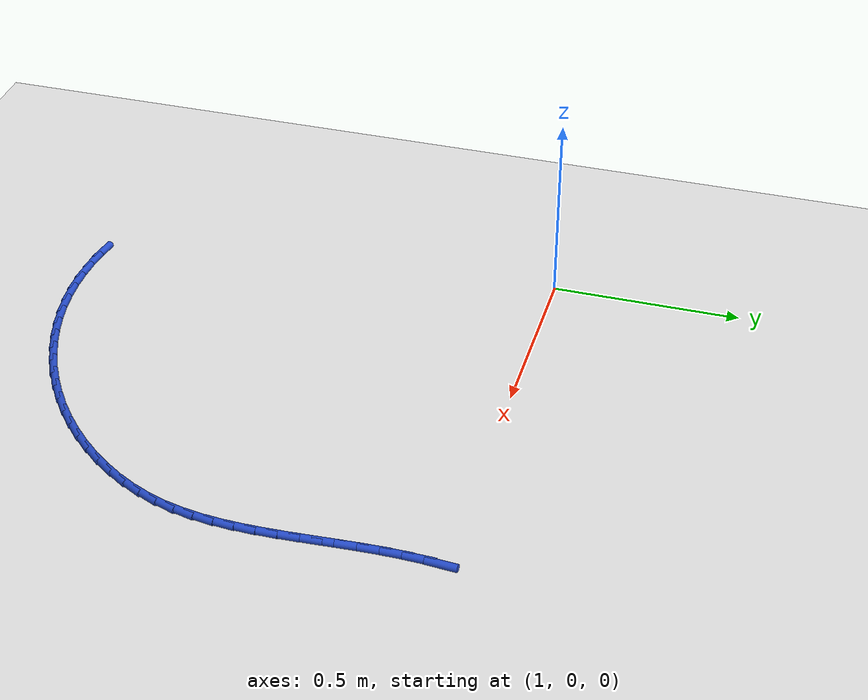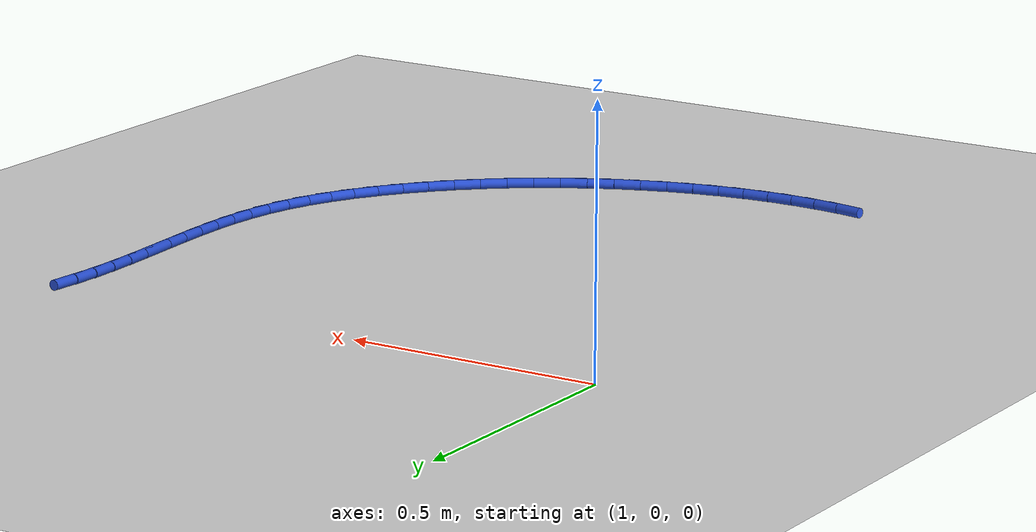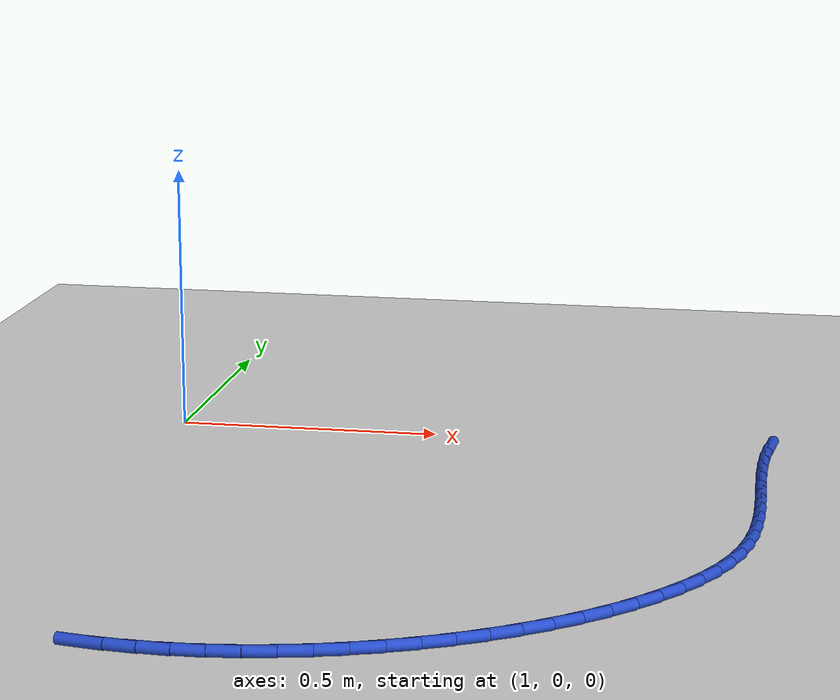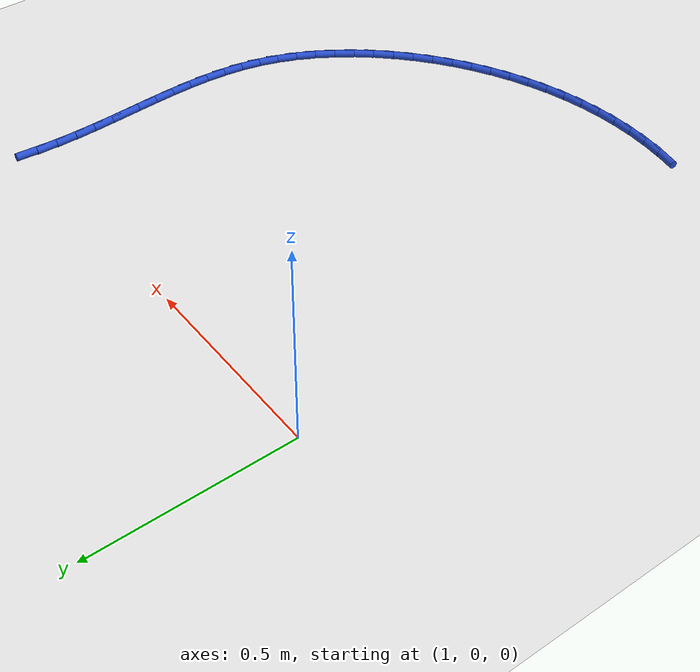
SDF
<sdf version="1.6">
 <world name="default">
  <model name="ground_plane">
   <static>1</static>
   <link name="link">
    <collision name="collision">
     <geometry><plane><normal>0 0 1</normal><size>100 100</size></plane></geometry>
     <surface><friction><ode><mu>100</mu><mu2>50</mu2></ode></friction></surface>
    </collision>
    <visual name="visual">
     <cast_shadows>0</cast_shadows>
     <geometry><plane><normal>0 0 1</normal><size>100 100</size></plane></geometry>
     <material>
      <script><uri>file://media/materials/scripts/gazebo.material</uri><name>Gazebo/WhiteGlow</name></script>
     </material>
    </visual>
   </link>
  </model>
  <model name="line">
   <link name="link_70">
    <pose>2.1427502178637186 -0.0031276059772412618 0.01 0 1.57 1.4941530411305144</pose>
    <collision name="collision">
     <geometry><cylinder><radius>0.01</radius><length>0.08</length></cylinder></geometry>
    </collision>
    <visual name="visual">
     <material>
      <script><name>Gazebo/Blue</name><uri>file://media/materials/scripts/gazebo.material</uri></script>
     </material>
     <geometry><cylinder><radius>0.01</radius><length>0.08</length></cylinder></geometry>
    </visual>
   </link>
   <link name="link_71">
    <pose>2.1387025013404113 -0.05583656401671815 0.01 0 1.57 1.545949200057749</pose>
    <collision name="collision">
     <geometry><cylinder><radius>0.01</radius><length>0.08</length></cylinder></geometry>
    </collision>
    <visual name="visual">
     <material>
      <script><name>Gazebo/Blue</name><uri>file://media/materials/scripts/gazebo.material</uri></script>
     </material>
     <geometry><cylinder><radius>0.01</radius><length>0.08</length></cylinder></geometry>
    </visual>
   </link>
   <link name="link_72">
    <pose>2.1373833662620587 -0.10891568306555233 0.01 0 1.57 -1.556020988119271</pose>
    <collision name="collision">
     <geometry><cylinder><radius>0.01</radius><length>0.08</length></cylinder></geometry>
    </collision>
    <visual name="visual">
     <material>
      <script><name>Gazebo/Blue</name><uri>file://media/materials/scripts/gazebo.material</uri></script>
     </material>
     <geometry><cylinder><radius>0.01</radius><length>0.08</length></cylinder></geometry>
    </visual>
   </link>
   <link name="link_73">
    <pose>2.138171521332069 -0.1622544072915345 0.01 0 1.57 -1.5283046523151043</pose>
    <collision name="collision">
     <geometry><cylinder><radius>0.01</radius><length>0.08</length></cylinder></geometry>
    </collision>
    <visual name="visual">
     <material>
      <script><name>Gazebo/Blue</name><uri>file://media/materials/scripts/gazebo.material</uri></script>
     </material>
     <geometry><cylinder><radius>0.01</radius><length>0.08</length></cylinder></geometry>
    </visual>
   </link>
   <link name="link_74">
    <pose>2.140445675253847 -0.2157421808624529 0.01 0 1.57 -1.5122218912454404</pose>
    <collision name="collision">
     <geometry><cylinder><radius>0.01</radius><length>0.08</length></cylinder></geometry>
    </collision>
    <visual name="visual">
     <material>
      <script><name>Gazebo/Blue</name><uri>file://media/materials/scripts/gazebo.material</uri></script>
     </material>
     <geometry><cylinder><radius>0.01</radius><length>0.08</length></cylinder></geometry>
    </visual>
   </link>
   <link name="link_75">
    <pose>2.1435845367308013 -0.2692684479460983 0.01 0 1.57 -1.5076062605046283</pose>
    <collision name="collision">
     <geometry><cylinder><radius>0.01</radius><length>0.08</length></cylinder></geometry>
    </collision>
    <visual name="visual">
     <material>
      <script><name>Gazebo/Blue</name><uri>file://media/materials/scripts/gazebo.material</uri></script>
     </material>
     <geometry><cylinder><radius>0.01</radius><length>0.08</length></cylinder></geometry>
    </visual>
   </link>
   <link name="link_76">
    <pose>2.146966814466337 -0.3227226527102605 0.01 0 1.57 -1.5144581628913876</pose>
    <collision name="collision">
     <geometry><cylinder><radius>0.01</radius><length>0.08</length></cylinder></geometry>
    </collision>
    <visual name="visual">
     <material>
      <script><name>Gazebo/Blue</name><uri>file://media/materials/scripts/gazebo.material</uri></script>
     </material>
     <geometry><cylinder><radius>0.01</radius><length>0.08</length></cylinder></geometry>
    </visual>
   </link>
   <link name="link_77">
    <pose>2.1499712171638623 -0.3759942393227296 0.01 0 1.57 -1.5329643212624884</pose>
    <collision name="collision">
     <geometry><cylinder><radius>0.01</radius><length>0.08</length></cylinder></geometry>
    </collision>
    <visual name="visual">
     <material>
      <script><name>Gazebo/Blue</name><uri>file://media/materials/scripts/gazebo.material</uri></script>
     </material>
     <geometry><cylinder><radius>0.01</radius><length>0.08</length></cylinder></geometry>
    </visual>
   </link>
   <link name="link_78">
    <pose>2.151976453526782 -0.42897265195129614 0.01 0 1.57 -1.5634777498424401</pose>
    <collision name="collision">
     <geometry><cylinder><radius>0.01</radius><length>0.08</length></cylinder></geometry>
    </collision>
    <visual name="visual">
     <material>
      <script><name>Gazebo/Blue</name><uri>file://media/materials/scripts/gazebo.material</uri></script>
     </material>
     <geometry><cylinder><radius>0.01</radius><length>0.08</length></cylinder></geometry>
    </visual>
   </link>
   <link name="link_79">
    <pose>2.1523612322585044 -0.48154733476374834 0.01 0 1.57 1.5351419071781498</pose>
    <collision name="collision">
     <geometry><cylinder><radius>0.01</radius><length>0.08</length></cylinder></geometry>
    </collision>
    <visual name="visual">
     <material>
      <script><name>Gazebo/Blue</name><uri>file://media/materials/scripts/gazebo.material</uri></script>
     </material>
     <geometry><cylinder><radius>0.01</radius><length>0.08</length></cylinder></geometry>
    </visual>
   </link>
   <link name="link_80">
    <pose>2.1505042620624355 -0.5336077319278771 0.01 0 1.57 1.4792870980030695</pose>
    <collision name="collision">
     <geometry><cylinder><radius>0.01</radius><length>0.08</length></cylinder></geometry>
    </collision>
    <visual name="visual">
     <material>
      <script><name>Gazebo/Blue</name><uri>file://media/materials/scripts/gazebo.material</uri></script>
     </material>
     <geometry><cylinder><radius>0.01</radius><length>0.08</length></cylinder></geometry>
    </visual>
   </link>
   <link name="link_81">
    <pose>2.145784251641981 -0.5850432876114722 0.01 0 1.57 1.4103661859066337</pose>
    <collision name="collision">
     <geometry><cylinder><radius>0.01</radius><length>0.08</length></cylinder></geometry>
    </collision>
    <visual name="visual">
     <material>
      <script><name>Gazebo/Blue</name><uri>file://media/materials/scripts/gazebo.material</uri></script>
     </material>
     <geometry><cylinder><radius>0.01</radius><length>0.08</length></cylinder></geometry>
    </visual>
   </link>
   <link name="link_82">
    <pose>2.137579909700549 -0.6357434459823244 0.01 0 1.57 1.3287192543375976</pose>
    <collision name="collision">
     <geometry><cylinder><radius>0.01</radius><length>0.08</length></cylinder></geometry>
    </collision>
    <visual name="visual">
     <material>
      <script><name>Gazebo/Blue</name><uri>file://media/materials/scripts/gazebo.material</uri></script>
     </material>
     <geometry><cylinder><radius>0.01</radius><length>0.08</length></cylinder></geometry>
    </visual>
   </link>
   <link name="link_83">
    <pose>2.1252699449415453 -0.6855976512082218 0.01 0 1.57 1.2381552293666858</pose>
    <collision name="collision">
     <geometry><cylinder><radius>0.01</radius><length>0.08</length></cylinder></geometry>
    </collision>
    <visual name="visual">
     <material>
      <script><name>Gazebo/Blue</name><uri>file://media/materials/scripts/gazebo.material</uri></script>
     </material>
     <geometry><cylinder><radius>0.01</radius><length>0.08</length></cylinder></geometry>
    </visual>
   </link>
   <link name="link_84">
    <pose>2.1083825065230695 -0.7344789509806605 0.01 0 1.57 1.1514655388970272</pose>
    <collision name="collision">
     <geometry><cylinder><radius>0.01</radius><length>0.08</length></cylinder></geometry>
    </collision>
    <visual name="visual">
     <material>
      <script><name>Gazebo/Blue</name><uri>file://media/materials/scripts/gazebo.material</uri></script>
     </material>
     <geometry><cylinder><radius>0.01</radius><length>0.08</length></cylinder></geometry>
    </visual>
   </link>
   <link name="link_85">
    <pose>2.087115736659585 -0.7821868819375905 0.01 0 1.57 1.0714768864790785</pose>
    <collision name="collision">
     <geometry><cylinder><radius>0.01</radius><length>0.08</length></cylinder></geometry>
    </collision>
    <visual name="visual">
     <material>
      <script><name>Gazebo/Blue</name><uri>file://media/materials/scripts/gazebo.material</uri></script>
     </material>
     <geometry><cylinder><radius>0.01</radius><length>0.08</length></cylinder></geometry>
    </visual>
   </link>
   <link name="link_86">
    <pose>2.061855463670299 -0.8285003879613149 0.01 0 1.57 0.9973484629855888</pose>
    <collision name="collision">
     <geometry><cylinder><radius>0.01</radius><length>0.08</length></cylinder></geometry>
    </collision>
    <visual name="visual">
     <material>
      <script><name>Gazebo/Blue</name><uri>file://media/materials/scripts/gazebo.material</uri></script>
     </material>
     <geometry><cylinder><radius>0.01</radius><length>0.08</length></cylinder></geometry>
    </visual>
   </link>
   <link name="link_87">
    <pose>2.0329875250800122 -0.8731984119241073 0.01 0 1.57 0.9281371110666432</pose>
    <collision name="collision">
     <geometry><cylinder><radius>0.01</radius><length>0.08</length></cylinder></geometry>
    </collision>
    <visual name="visual">
     <material>
      <script><name>Gazebo/Blue</name><uri>file://media/materials/scripts/gazebo.material</uri></script>
     </material>
     <geometry><cylinder><radius>0.01</radius><length>0.08</length></cylinder></geometry>
    </visual>
   </link>
   <link name="link_88">
    <pose>2.000897758413525 -0.9160598966982397 0.01 0 1.57 0.8627489974321949</pose>
    <collision name="collision">
     <geometry><cylinder><radius>0.01</radius><length>0.08</length></cylinder></geometry>
    </collision>
    <visual name="visual">
     <material>
      <script><name>Gazebo/Blue</name><uri>file://media/materials/scripts/gazebo.material</uri></script>
     </material>
     <geometry><cylinder><radius>0.01</radius><length>0.08</length></cylinder></geometry>
    </visual>
   </link>
   <link name="link_89">
    <pose>1.9659545259280977 -0.9568747991427625 0.01 0 1.57 0.7996614941349319</pose>
    <collision name="collision">
     <geometry><cylinder><radius>0.01</radius><length>0.08</length></cylinder></geometry>
    </collision>
    <visual name="visual">
     <material>
      <script><name>Gazebo/Blue</name><uri>file://media/materials/scripts/gazebo.material</uri></script>
     </material>
     <geometry><cylinder><radius>0.01</radius><length>0.08</length></cylinder></geometry>
    </visual>
   </link>
   <link name="link_90">
    <pose>1.9284090243979184 -0.9955069209993923 0.01 0 1.57 0.738227488729226</pose>
    <collision name="collision">
     <geometry><cylinder><radius>0.01</radius><length>0.08</length></cylinder></geometry>
    </collision>
    <visual name="visual">
     <material>
      <script><name>Gazebo/Blue</name><uri>file://media/materials/scripts/gazebo.material</uri></script>
     </material>
     <geometry><cylinder><radius>0.01</radius><length>0.08</length></cylinder></geometry>
    </visual>
   </link>
   <link name="link_91">
    <pose>1.8884642861940528 -1.031850420174511 0.01 0 1.57 0.6781500763810572</pose>
    <collision name="collision">
     <geometry><cylinder><radius>0.01</radius><length>0.08</length></cylinder></geometry>
    </collision>
    <visual name="visual">
     <material>
      <script><name>Gazebo/Blue</name><uri>file://media/materials/scripts/gazebo.material</uri></script>
     </material>
     <geometry><cylinder><radius>0.01</radius><length>0.08</length></cylinder></geometry>
    </visual>
   </link>
   <link name="link_92">
    <pose>1.846323195558819 -1.0657995479343367 0.01 0 1.57 0.619113159411725</pose>
    <collision name="collision">
     <geometry><cylinder><radius>0.01</radius><length>0.08</length></cylinder></geometry>
    </collision>
    <visual name="visual">
     <material>
      <script><name>Gazebo/Blue</name><uri>file://media/materials/scripts/gazebo.material</uri></script>
     </material>
     <geometry><cylinder><radius>0.01</radius><length>0.08</length></cylinder></geometry>
    </visual>
   </link>
   <link name="link_93">
    <pose>1.802188636734529 -1.0972485555450882 0.01 0 1.57 0.5607872694987799</pose>
    <collision name="collision">
     <geometry><cylinder><radius>0.01</radius><length>0.08</length></cylinder></geometry>
    </collision>
    <visual name="visual">
     <material>
      <script><name>Gazebo/Blue</name><uri>file://media/materials/scripts/gazebo.material</uri></script>
     </material>
     <geometry><cylinder><radius>0.01</radius><length>0.08</length></cylinder></geometry>
    </visual>
   </link>
   <link name="link_94">
    <pose>1.7562634939634993 -1.1260916942729844 0.01 0 1.57 0.5028344487290717</pose>
    <collision name="collision">
     <geometry><cylinder><radius>0.01</radius><length>0.08</length></cylinder></geometry>
    </collision>
    <visual name="visual">
     <material>
      <script><name>Gazebo/Blue</name><uri>file://media/materials/scripts/gazebo.material</uri></script>
     </material>
     <geometry><cylinder><radius>0.01</radius><length>0.08</length></cylinder></geometry>
    </visual>
   </link>
   <link name="link_95">
    <pose>1.7087506514880424 -1.1522232153842444 0.01 0 1.57 0.4449118085623051</pose>
    <collision name="collision">
     <geometry><cylinder><radius>0.01</radius><length>0.08</length></cylinder></geometry>
    </collision>
    <visual name="visual">
     <material>
      <script><name>Gazebo/Blue</name><uri>file://media/materials/scripts/gazebo.material</uri></script>
     </material>
     <geometry><cylinder><radius>0.01</radius><length>0.08</length></cylinder></geometry>
    </visual>
   </link>
   <link name="link_96">
    <pose>1.6598529935504747 -1.1755373701450855 0.01 0 1.57 0.3866743733254347</pose>
    <collision name="collision">
     <geometry><cylinder><radius>0.01</radius><length>0.08</length></cylinder></geometry>
    </collision>
    <visual name="visual">
     <material>
      <script><name>Gazebo/Blue</name><uri>file://media/materials/scripts/gazebo.material</uri></script>
     </material>
     <geometry><cylinder><radius>0.01</radius><length>0.08</length></cylinder></geometry>
    </visual>
   </link>
   <link name="link_97">
    <pose>1.6097734043931107 -1.1959284098217269 0.01 0 1.57 0.32777782389761156</pose>
    <collision name="collision">
     <geometry><cylinder><radius>0.01</radius><length>0.08</length></cylinder></geometry>
    </collision>
    <visual name="visual">
     <material>
      <script><name>Gazebo/Blue</name><uri>file://media/materials/scripts/gazebo.material</uri></script>
     </material>
     <geometry><cylinder><radius>0.01</radius><length>0.08</length></cylinder></geometry>
    </visual>
   </link>
   <link name="link_98">
    <pose>1.558714768258264 -1.2132905856803877 0.01 0 1.57 0.26788176875214487</pose>
    <collision name="collision">
     <geometry><cylinder><radius>0.01</radius><length>0.08</length></cylinder></geometry>
    </collision>
    <visual name="visual">
     <material>
      <script><name>Gazebo/Blue</name><uri>file://media/materials/scripts/gazebo.material</uri></script>
     </material>
     <geometry><cylinder><radius>0.01</radius><length>0.08</length></cylinder></geometry>
    </visual>
   </link>
   <link name="link_99">
    <pose>1.5068799693882502 -1.2275181489872864 0.01 0 1.57 0.20665418649996495</pose>
    <collision name="collision">
     <geometry><cylinder><radius>0.01</radius><length>0.08</length></cylinder></geometry>
    </collision>
    <visual name="visual">
     <material>
      <script><name>Gazebo/Blue</name><uri>file://media/materials/scripts/gazebo.material</uri></script>
     </material>
     <geometry><cylinder><radius>0.01</radius><length>0.08</length></cylinder></geometry>
    </visual>
   </link>
   <link name="link_100">
    <pose>1.4544718920253825 -1.2385053510086412 0.01 0 1.57 0.14377769536654839</pose>
    <collision name="collision">
     <geometry><cylinder><radius>0.01</radius><length>0.08</length></cylinder></geometry>
    </collision>
    <visual name="visual">
     <material>
      <script><name>Gazebo/Blue</name><uri>file://media/materials/scripts/gazebo.material</uri></script>
     </material>
     <geometry><cylinder><radius>0.01</radius><length>0.08</length></cylinder></geometry>
    </visual>
   </link>
   <link name="link_101">
    <pose>1.4016934204119778 -1.2461464430106712 0.01 0 1.57 0.07895853024576492</pose>
    <collision name="collision">
     <geometry><cylinder><radius>0.01</radius><length>0.08</length></cylinder></geometry>
    </collision>
    <visual name="visual">
     <material>
      <script><name>Gazebo/Blue</name><uri>file://media/materials/scripts/gazebo.material</uri></script>
     </material>
     <geometry><cylinder><radius>0.01</radius><length>0.08</length></cylinder></geometry>
    </visual>
   </link>
   <link name="link_102">
    <pose>1.348747434315901 -1.2503356897582338 0.01 0 1.57 0.013018079209404875</pose>
    <collision name="collision">
     <geometry><cylinder><radius>0.01</radius><length>0.08</length></cylinder></geometry>
    </collision>
    <visual name="visual">
     <material>
      <script><name>Gazebo/Blue</name><uri>file://media/materials/scripts/gazebo.material</uri></script>
     </material>
     <geometry><cylinder><radius>0.01</radius><length>0.08</length></cylinder></geometry>
    </visual>
   </link>
   <link name="link_103">
    <pose>1.2958177818981227 -1.2510247710926679 0.01 0 1.57 -0.050545953156671146</pose>
    <collision name="collision">
     <geometry><cylinder><radius>0.01</radius><length>0.08</length></cylinder></geometry>
    </collision>
    <visual name="visual">
     <material>
      <script><name>Gazebo/Blue</name><uri>file://media/materials/scripts/gazebo.material</uri></script>
     </material>
     <geometry><cylinder><radius>0.01</radius><length>0.08</length></cylinder></geometry>
    </visual>
   </link>
   <link name="link_104">
    <pose>1.243025760068909 -1.2483540731932883 0.01 0 1.57 -0.11090053508823638</pose>
    <collision name="collision">
     <geometry><cylinder><radius>0.01</radius><length>0.08</length></cylinder></geometry>
    </collision>
    <visual name="visual">
     <material>
      <script><name>Gazebo/Blue</name><uri>file://media/materials/scripts/gazebo.material</uri></script>
     </material>
     <geometry><cylinder><radius>0.01</radius><length>0.08</length></cylinder></geometry>
    </visual>
   </link>
   <link name="link_105">
    <pose>1.1904798339249327 -1.2425026936084993 0.01 0 1.57 -0.16802573047984018</pose>
    <collision name="collision">
     <geometry><cylinder><radius>0.01</radius><length>0.08</length></cylinder></geometry>
    </collision>
    <visual name="visual">
     <material>
      <script><name>Gazebo/Blue</name><uri>file://media/materials/scripts/gazebo.material</uri></script>
     </material>
     <geometry><cylinder><radius>0.01</radius><length>0.08</length></cylinder></geometry>
    </visual>
   </link>
  </model>
 </world>
</sdf>
